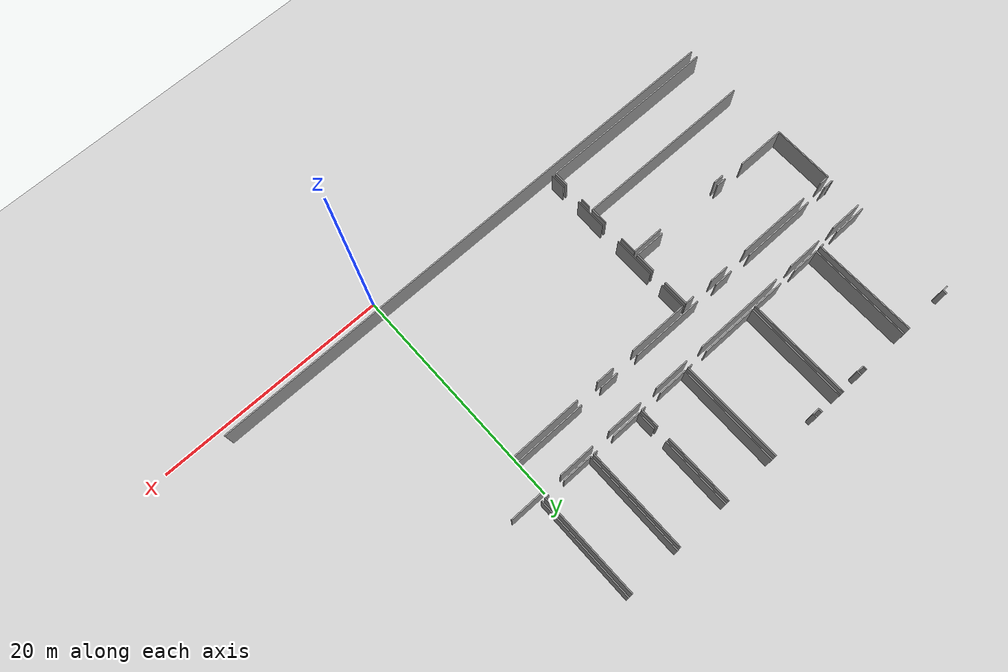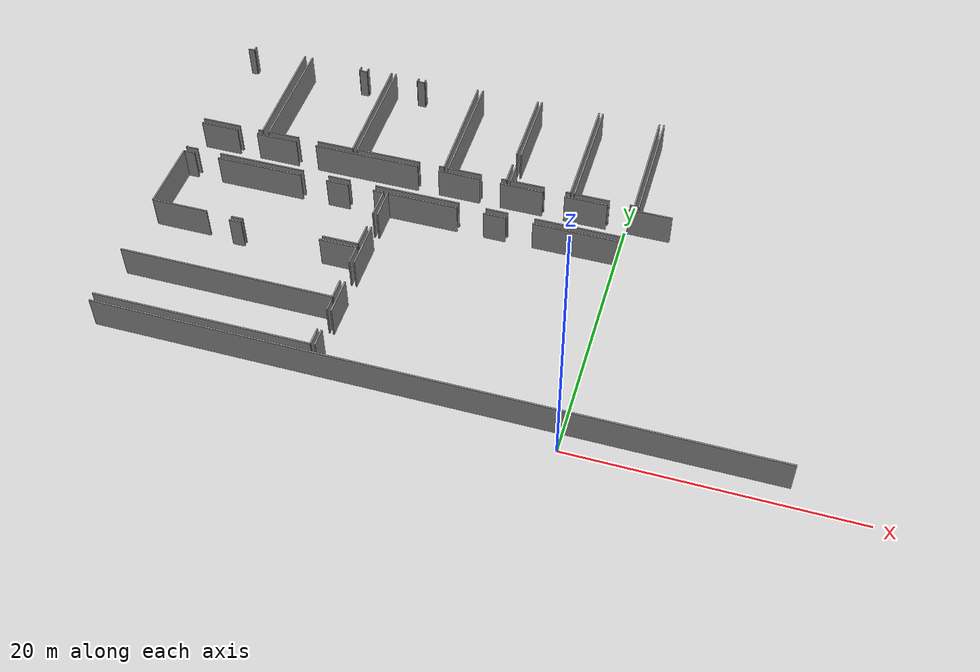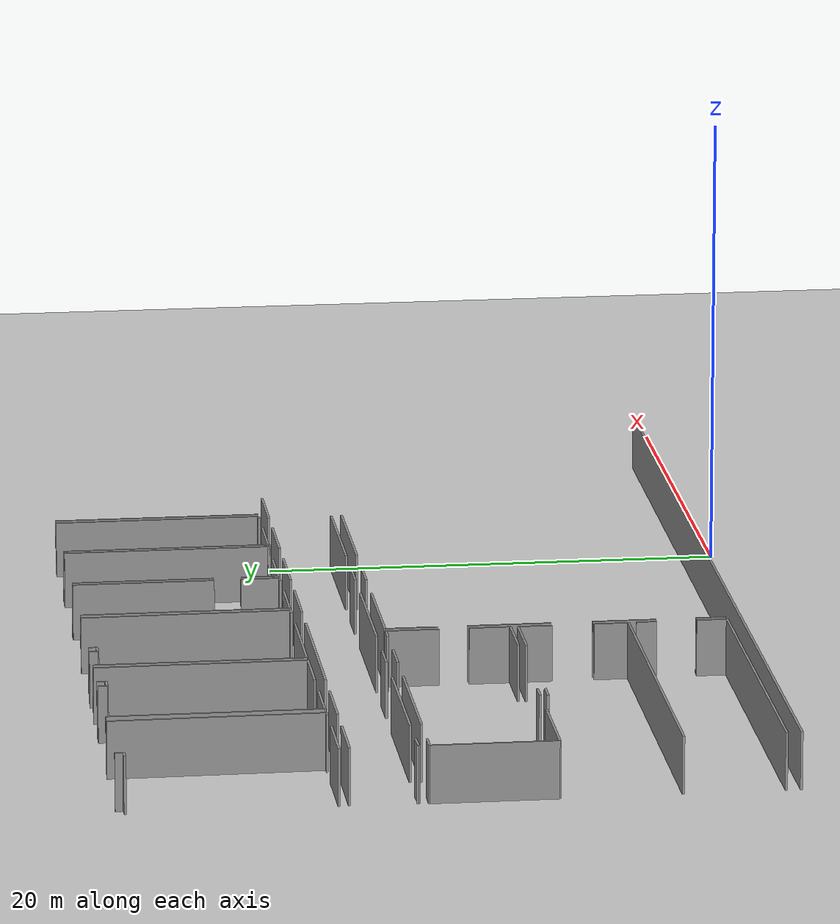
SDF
<sdf version="1.6">
 <world name="default">
  <model name="ground_plane">
   <static>1</static>
   <link name="link">
    <collision name="collision">
     <geometry><plane><normal>0 0 1</normal><size>100 100</size></plane></geometry>
     <surface><friction><ode><mu>100</mu><mu2>50</mu2></ode></friction></surface>
    </collision>
    <visual name="visual">
     <cast_shadows>0</cast_shadows>
     <geometry><plane><normal>0 0 1</normal><size>100 100</size></plane></geometry>
     <material>
      <script><uri>file://media/materials/scripts/gazebo.material</uri><name>Gazebo/Grey</name></script>
     </material>
    </visual>
   </link>
  </model>
  <model name="50010535_PLAN2">
   <static>1</static>
   <link name="Wall_160">
    <collision name="Wall_160_Collision">
     <geometry><box><size>0.0955509107196 0.1 2.5</size></box></geometry>
     <pose>0.0477754553598 0 1.25 0 0 0</pose>
    </collision>
    <visual name="Wall_160_Visual">
     <pose>0.0477754553598 0 1.25 0 0 0</pose>
     <geometry><box><size>0.0955509107196 0.1 2.5</size></box></geometry>
     <material>
      <script><uri>file://media/materials/scripts/gazebo.material</uri><name>Gazebo/Grey</name></script>
      <ambient>1 1 1 1</ambient>
     </material>
    </visual>
    <pose>69.3829469578 -12.5819457062 0 0 0 1.57079632679</pose>
   </link>
   <link name="Wall_161">
    <collision name="Wall_161_Collision">
     <geometry><box><size>2.8990552912 0.1 2.5</size></box></geometry>
     <pose>1.4495276456 0 1.25 0 0 0</pose>
    </collision>
    <visual name="Wall_161_Visual">
     <pose>1.4495276456 0 1.25 0 0 0</pose>
     <geometry><box><size>2.8990552912 0.1 2.5</size></box></geometry>
     <material>
      <script><uri>file://media/materials/scripts/gazebo.material</uri><name>Gazebo/Grey</name></script>
      <ambient>1 1 1 1</ambient>
     </material>
    </visual>
    <pose>69.3829469578 -9.74515098187 0 0 0 0.0</pose>
   </link>
   <link name="Wall_162">
    <collision name="Wall_162_Collision">
     <geometry><box><size>3.18215027668 0.1 2.5</size></box></geometry>
     <pose>1.59107513834 0 1.25 0 0 0</pose>
    </collision>
    <visual name="Wall_162_Visual">
     <pose>1.59107513834 0 1.25 0 0 0</pose>
     <geometry><box><size>3.18215027668 0.1 2.5</size></box></geometry>
     <material>
      <script><uri>file://media/materials/scripts/gazebo.material</uri><name>Gazebo/Grey</name></script>
      <ambient>1 1 1 1</ambient>
     </material>
    </visual>
    <pose>73.8934073683 -9.74515098187 0 0 0 0.0</pose>
   </link>
   <link name="Wall_163">
    <collision name="Wall_163_Collision">
     <geometry><box><size>8.06591996341 0.1 2.5</size></box></geometry>
     <pose>4.0329599817 0 1.25 0 0 0</pose>
    </collision>
    <visual name="Wall_163_Visual">
     <pose>4.0329599817 0 1.25 0 0 0</pose>
     <geometry><box><size>8.06591996341 0.1 2.5</size></box></geometry>
     <material>
      <script><uri>file://media/materials/scripts/gazebo.material</uri><name>Gazebo/Grey</name></script>
      <ambient>1 1 1 1</ambient>
     </material>
    </visual>
    <pose>78.6429991804 -9.74515098187 0 0 0 0.0</pose>
   </link>
   <link name="Wall_164">
    <collision name="Wall_164_Collision">
     <geometry><box><size>3.18545389859 0.1 2.5</size></box></geometry>
     <pose>1.5927269493 0 1.25 0 0 0</pose>
    </collision>
    <visual name="Wall_164_Visual">
     <pose>1.5927269493 0 1.25 0 0 0</pose>
     <geometry><box><size>3.18545389859 0.1 2.5</size></box></geometry>
     <material>
      <script><uri>file://media/materials/scripts/gazebo.material</uri><name>Gazebo/Grey</name></script>
      <ambient>1 1 1 1</ambient>
     </material>
    </visual>
    <pose>88.316258267 -9.74515098187 0 0 0 0.0</pose>
   </link>
   <link name="Wall_165">
    <collision name="Wall_165_Collision">
     <geometry><box><size>3.2261138606 0.1 2.5</size></box></geometry>
     <pose>1.6130569303 0 1.25 0 0 0</pose>
    </collision>
    <visual name="Wall_165_Visual">
     <pose>1.6130569303 0 1.25 0 0 0</pose>
     <geometry><box><size>3.2261138606 0.1 2.5</size></box></geometry>
     <material>
      <script><uri>file://media/materials/scripts/gazebo.material</uri><name>Gazebo/Grey</name></script>
      <ambient>1 1 1 1</ambient>
     </material>
    </visual>
    <pose>93.0813516896 -9.74515098187 0 0 0 0.0</pose>
   </link>
   <link name="Wall_166">
    <collision name="Wall_166_Collision">
     <geometry><box><size>3.19129876813 0.1 2.5</size></box></geometry>
     <pose>1.59564938407 0 1.25 0 0 0</pose>
    </collision>
    <visual name="Wall_166_Visual">
     <pose>1.59564938407 0 1.25 0 0 0</pose>
     <geometry><box><size>3.19129876813 0.1 2.5</size></box></geometry>
     <material>
      <script><uri>file://media/materials/scripts/gazebo.material</uri><name>Gazebo/Grey</name></script>
      <ambient>1 1 1 1</ambient>
     </material>
    </visual>
    <pose>97.9336099058 -9.74515098187 0 0 0 0.0</pose>
   </link>
   <link name="Wall_167">
    <collision name="Wall_167_Collision">
     <geometry><box><size>3.1745265338 0.1 2.5</size></box></geometry>
     <pose>1.5872632669 0 1.25 0 0 0</pose>
    </collision>
    <visual name="Wall_167_Visual">
     <pose>1.5872632669 0 1.25 0 0 0</pose>
     <geometry><box><size>3.1745265338 0.1 2.5</size></box></geometry>
     <material>
      <script><uri>file://media/materials/scripts/gazebo.material</uri><name>Gazebo/Grey</name></script>
      <ambient>1 1 1 1</ambient>
     </material>
    </visual>
    <pose>102.712426066 -9.74515098187 0 0 0 0.0</pose>
   </link>
   <link name="Wall_189">
    <collision name="Wall_189_Collision">
     <geometry><box><size>6.31728747228 0.1 2.5</size></box></geometry>
     <pose>3.15864373614 0 1.25 0 0 0</pose>
    </collision>
    <visual name="Wall_189_Visual">
     <pose>3.15864373614 0 1.25 0 0 0</pose>
     <geometry><box><size>6.31728747228 0.1 2.5</size></box></geometry>
     <material>
      <script><uri>file://media/materials/scripts/gazebo.material</uri><name>Gazebo/Grey</name></script>
      <ambient>1 1 1 1</ambient>
     </material>
    </visual>
    <pose>102.756389649 -12.5499259862 0 0 0 3.14159265359</pose>
   </link>
   <link name="Wall_190">
    <collision name="Wall_190_Collision">
     <geometry><box><size>1.66782081663 0.1 2.5</size></box></geometry>
     <pose>0.833910408315 0 1.25 0 0 0</pose>
    </collision>
    <visual name="Wall_190_Visual">
     <pose>0.833910408315 0 1.25 0 0 0</pose>
     <geometry><box><size>1.66782081663 0.1 2.5</size></box></geometry>
     <material>
      <script><uri>file://media/materials/scripts/gazebo.material</uri><name>Gazebo/Grey</name></script>
      <ambient>1 1 1 1</ambient>
     </material>
    </visual>
    <pose>94.4554042807 -12.5499259862 0 0 0 3.14159265359</pose>
   </link>
   <link name="Wall_191">
    <collision name="Wall_191_Collision">
     <geometry><box><size>6.39301665153 0.1 2.5</size></box></geometry>
     <pose>3.19650832576 0 1.25 0 0 0</pose>
    </collision>
    <visual name="Wall_191_Visual">
     <pose>3.19650832576 0 1.25 0 0 0</pose>
     <geometry><box><size>6.39301665153 0.1 2.5</size></box></geometry>
     <material>
      <script><uri>file://media/materials/scripts/gazebo.material</uri><name>Gazebo/Grey</name></script>
      <ambient>1 1 1 1</ambient>
     </material>
    </visual>
    <pose>90.7787272161 -12.5499259862 0 0 0 3.14159265359</pose>
   </link>
   <link name="Wall_192">
    <collision name="Wall_192_Collision">
     <geometry><box><size>1.68027292999 0.1 2.5</size></box></geometry>
     <pose>0.840136464997 0 1.25 0 0 0</pose>
    </collision>
    <visual name="Wall_192_Visual">
     <pose>0.840136464997 0 1.25 0 0 0</pose>
     <geometry><box><size>1.68027292999 0.1 2.5</size></box></geometry>
     <material>
      <script><uri>file://media/materials/scripts/gazebo.material</uri><name>Gazebo/Grey</name></script>
      <ambient>1 1 1 1</ambient>
     </material>
    </visual>
    <pose>82.4147189062 -12.5499259862 0 0 0 3.14159265359</pose>
   </link>
   <link name="Wall_193">
    <collision name="Wall_193_Collision">
     <geometry><box><size>6.63291042737 0.1 2.5</size></box></geometry>
     <pose>3.31645521369 0 1.25 0 0 0</pose>
    </collision>
    <visual name="Wall_193_Visual">
     <pose>3.31645521369 0 1.25 0 0 0</pose>
     <geometry><box><size>6.63291042737 0.1 2.5</size></box></geometry>
     <material>
      <script><uri>file://media/materials/scripts/gazebo.material</uri><name>Gazebo/Grey</name></script>
      <ambient>1 1 1 1</ambient>
     </material>
    </visual>
    <pose>78.7380418416 -12.5499259862 0 0 0 3.14159265359</pose>
   </link>
   <link name="Wall_194">
    <collision name="Wall_194_Collision">
     <geometry><box><size>0.878076810685 0.1 2.5</size></box></geometry>
     <pose>0.439038405343 0 1.25 0 0 0</pose>
    </collision>
    <visual name="Wall_194_Visual">
     <pose>0.439038405343 0 1.25 0 0 0</pose>
     <geometry><box><size>0.878076810685 0.1 2.5</size></box></geometry>
     <material>
      <script><uri>file://media/materials/scripts/gazebo.material</uri><name>Gazebo/Grey</name></script>
      <ambient>1 1 1 1</ambient>
     </material>
    </visual>
    <pose>70.2604397629 -12.5499259862 0 0 0 -3.10511882771</pose>
   </link>
   <link name="Wall_195">
    <collision name="Wall_195_Collision">
     <geometry><box><size>0.32655031988 0.1 2.5</size></box></geometry>
     <pose>0.16327515994 0 1.25 0 0 0</pose>
    </collision>
    <visual name="Wall_195_Visual">
     <pose>0.16327515994 0 1.25 0 0 0</pose>
     <geometry><box><size>0.32655031988 0.1 2.5</size></box></geometry>
     <material>
      <script><uri>file://media/materials/scripts/gazebo.material</uri><name>Gazebo/Grey</name></script>
      <ambient>1 1 1 1</ambient>
     </material>
    </visual>
    <pose>74.1597301195 -9.31491775887 0 0 0 3.14159265359</pose>
   </link>
   <link name="Wall_196">
    <collision name="Wall_196_Collision">
     <geometry><box><size>2.98240821331 0.1 2.5</size></box></geometry>
     <pose>1.49120410666 0 1.25 0 0 0</pose>
    </collision>
    <visual name="Wall_196_Visual">
     <pose>1.49120410666 0 1.25 0 0 0</pose>
     <geometry><box><size>2.98240821331 0.1 2.5</size></box></geometry>
     <material>
      <script><uri>file://media/materials/scripts/gazebo.material</uri><name>Gazebo/Grey</name></script>
      <ambient>1 1 1 1</ambient>
     </material>
    </visual>
    <pose>72.3305400787 -9.31491775887 0 0 0 3.14159265359</pose>
   </link>
   <link name="Wall_198">
    <collision name="Wall_198_Collision">
     <geometry><box><size>0.491477290776 0.1 2.5</size></box></geometry>
     <pose>0.245738645388 0 1.25 0 0 0</pose>
    </collision>
    <visual name="Wall_198_Visual">
     <pose>0.245738645388 0 1.25 0 0 0</pose>
     <geometry><box><size>0.491477290776 0.1 2.5</size></box></geometry>
     <material>
      <script><uri>file://media/materials/scripts/gazebo.material</uri><name>Gazebo/Grey</name></script>
      <ambient>1 1 1 1</ambient>
     </material>
    </visual>
    <pose>69.3481318653 -0.581869468816 0 0 0 0.0</pose>
   </link>
   <link name="Wall_199">
    <collision name="Wall_199_Collision">
     <geometry><box><size>0.37778187201 0.1 2.5</size></box></geometry>
     <pose>0.188890936005 0 1.25 0 0 0</pose>
    </collision>
    <visual name="Wall_199_Visual">
     <pose>0.188890936005 0 1.25 0 0 0</pose>
     <geometry><box><size>0.37778187201 0.1 2.5</size></box></geometry>
     <material>
      <script><uri>file://media/materials/scripts/gazebo.material</uri><name>Gazebo/Grey</name></script>
      <ambient>1 1 1 1</ambient>
     </material>
    </visual>
    <pose>69.8396091561 -0.581869468816 0 0 0 1.57079632679</pose>
   </link>
   <link name="Wall_200">
    <collision name="Wall_200_Collision">
     <geometry><box><size>9.11148239852 0.1 2.5</size></box></geometry>
     <pose>4.55574119926 0 1.25 0 0 0</pose>
    </collision>
    <visual name="Wall_200_Visual">
     <pose>4.55574119926 0 1.25 0 0 0</pose>
     <geometry><box><size>9.11148239852 0.1 2.5</size></box></geometry>
     <material>
      <script><uri>file://media/materials/scripts/gazebo.material</uri><name>Gazebo/Grey</name></script>
      <ambient>1 1 1 1</ambient>
     </material>
    </visual>
    <pose>74.0507105964 -0.204087596806 0 0 0 -1.55883097146</pose>
   </link>
   <link name="Wall_201">
    <collision name="Wall_201_Collision">
     <geometry><box><size>2.78622389662 0.1 2.5</size></box></geometry>
     <pose>1.39311194831 0 1.25 0 0 0</pose>
    </collision>
    <visual name="Wall_201_Visual">
     <pose>1.39311194831 0 1.25 0 0 0</pose>
     <geometry><box><size>2.78622389662 0.1 2.5</size></box></geometry>
     <material>
      <script><uri>file://media/materials/scripts/gazebo.material</uri><name>Gazebo/Grey</name></script>
      <ambient>1 1 1 1</ambient>
     </material>
    </visual>
    <pose>81.4231240828 -9.29560427692 0 0 0 3.14159265359</pose>
   </link>
   <link name="Wall_202">
    <collision name="Wall_202_Collision">
     <geometry><box><size>2.42104661283 0.1 2.5</size></box></geometry>
     <pose>1.21052330642 0 1.25 0 0 0</pose>
    </collision>
    <visual name="Wall_202_Visual">
     <pose>1.21052330642 0 1.25 0 0 0</pose>
     <geometry><box><size>2.42104661283 0.1 2.5</size></box></geometry>
     <material>
      <script><uri>file://media/materials/scripts/gazebo.material</uri><name>Gazebo/Grey</name></script>
      <ambient>1 1 1 1</ambient>
     </material>
    </visual>
    <pose>77.0996994975 -9.29560427692 0 0 0 3.14159265359</pose>
   </link>
   <link name="Wall_203">
    <collision name="Wall_203_Collision">
     <geometry><box><size>9.07588800722 0.1 2.5</size></box></geometry>
     <pose>4.53794400361 0 1.25 0 0 0</pose>
    </collision>
    <visual name="Wall_203_Visual">
     <pose>4.53794400361 0 1.25 0 0 0</pose>
     <geometry><box><size>9.07588800722 0.1 2.5</size></box></geometry>
     <material>
      <script><uri>file://media/materials/scripts/gazebo.material</uri><name>Gazebo/Grey</name></script>
      <ambient>1 1 1 1</ambient>
     </material>
    </visual>
    <pose>74.6786528846 -9.29560427692 0 0 0 1.57079632679</pose>
   </link>
   <link name="Wall_204">
    <collision name="Wall_204_Collision">
     <geometry><box><size>0.391275896902 0.1 2.5</size></box></geometry>
     <pose>0.195637948451 0 1.25 0 0 0</pose>
    </collision>
    <visual name="Wall_204_Visual">
     <pose>0.195637948451 0 1.25 0 0 0</pose>
     <geometry><box><size>0.391275896902 0.1 2.5</size></box></geometry>
     <material>
      <script><uri>file://media/materials/scripts/gazebo.material</uri><name>Gazebo/Grey</name></script>
      <ambient>1 1 1 1</ambient>
     </material>
    </visual>
    <pose>78.8523979848 -0.219716269703 0 0 0 -1.57079632679</pose>
   </link>
   <link name="Wall_205">
    <collision name="Wall_205_Collision">
     <geometry><box><size>0.598209691048 0.1 2.5</size></box></geometry>
     <pose>0.299104845524 0 1.25 0 0 0</pose>
    </collision>
    <visual name="Wall_205_Visual">
     <pose>0.299104845524 0 1.25 0 0 0</pose>
     <geometry><box><size>0.598209691048 0.1 2.5</size></box></geometry>
     <material>
      <script><uri>file://media/materials/scripts/gazebo.material</uri><name>Gazebo/Grey</name></script>
      <ambient>1 1 1 1</ambient>
     </material>
    </visual>
    <pose>78.8523979848 -0.610992166604 0 0 0 0.0</pose>
   </link>
   <link name="Wall_206">
    <collision name="Wall_206_Collision">
     <geometry><box><size>0.390437285185 0.1 2.5</size></box></geometry>
     <pose>0.195218642593 0 1.25 0 0 0</pose>
    </collision>
    <visual name="Wall_206_Visual">
     <pose>0.195218642593 0 1.25 0 0 0</pose>
     <geometry><box><size>0.390437285185 0.1 2.5</size></box></geometry>
     <material>
      <script><uri>file://media/materials/scripts/gazebo.material</uri><name>Gazebo/Grey</name></script>
      <ambient>1 1 1 1</ambient>
     </material>
    </visual>
    <pose>79.4506076758 -0.610992166604 0 0 0 1.57079632679</pose>
   </link>
   <link name="Wall_207">
    <collision name="Wall_207_Collision">
     <geometry><box><size>9.0751242037 0.1 2.5</size></box></geometry>
     <pose>4.53756210185 0 1.25 0 0 0</pose>
    </collision>
    <visual name="Wall_207_Visual">
     <pose>4.53756210185 0 1.25 0 0 0</pose>
     <geometry><box><size>9.0751242037 0.1 2.5</size></box></geometry>
     <material>
      <script><uri>file://media/materials/scripts/gazebo.material</uri><name>Gazebo/Grey</name></script>
      <ambient>1 1 1 1</ambient>
     </material>
    </visual>
    <pose>81.3862759922 -0.220554881419 0 0 0 -1.56673597555</pose>
   </link>
   <link name="Wall_208">
    <collision name="Wall_208_Collision">
     <geometry><box><size>0.36746440665 0.1 2.5</size></box></geometry>
     <pose>0.183732203325 0 1.25 0 0 0</pose>
    </collision>
    <visual name="Wall_208_Visual">
     <pose>0.183732203325 0 1.25 0 0 0</pose>
     <geometry><box><size>0.36746440665 0.1 2.5</size></box></geometry>
     <material>
      <script><uri>file://media/materials/scripts/gazebo.material</uri><name>Gazebo/Grey</name></script>
      <ambient>1 1 1 1</ambient>
     </material>
    </visual>
    <pose>88.6097723677 -9.28721815976 0 0 0 3.14159265359</pose>
   </link>
   <link name="Wall_209">
    <collision name="Wall_209_Collision">
     <geometry><box><size>4.94018538401 0.1 2.5</size></box></geometry>
     <pose>2.47009269201 0 1.25 0 0 0</pose>
    </collision>
    <visual name="Wall_209_Visual">
     <pose>2.47009269201 0 1.25 0 0 0</pose>
     <geometry><box><size>4.94018538401 0.1 2.5</size></box></geometry>
     <material>
      <script><uri>file://media/materials/scripts/gazebo.material</uri><name>Gazebo/Grey</name></script>
      <ambient>1 1 1 1</ambient>
     </material>
    </visual>
    <pose>86.7086650191 -9.28721815976 0 0 0 3.14159265359</pose>
   </link>
   <link name="Wall_210">
    <collision name="Wall_210_Collision">
     <geometry><box><size>9.05405869011 0.1 2.5</size></box></geometry>
     <pose>4.52702934506 0 1.25 0 0 0</pose>
    </collision>
    <visual name="Wall_210_Visual">
     <pose>4.52702934506 0 1.25 0 0 0</pose>
     <geometry><box><size>9.05405869011 0.1 2.5</size></box></geometry>
     <material>
      <script><uri>file://media/materials/scripts/gazebo.material</uri><name>Gazebo/Grey</name></script>
      <ambient>1 1 1 1</ambient>
     </material>
    </visual>
    <pose>81.7684796351 -9.28721815976 0 0 0 1.57079632679</pose>
   </link>
   <link name="Wall_211">
    <collision name="Wall_211_Collision">
     <geometry><box><size>0.361238349968 0.1 2.5</size></box></geometry>
     <pose>0.180619174984 0 1.25 0 0 0</pose>
    </collision>
    <visual name="Wall_211_Visual">
     <pose>0.180619174984 0 1.25 0 0 0</pose>
     <geometry><box><size>0.361238349968 0.1 2.5</size></box></geometry>
     <material>
      <script><uri>file://media/materials/scripts/gazebo.material</uri><name>Gazebo/Grey</name></script>
      <ambient>1 1 1 1</ambient>
     </material>
    </visual>
    <pose>83.6708576075 -0.233159469642 0 0 0 -1.57079632679</pose>
   </link>
   <link name="Wall_212">
    <collision name="Wall_212_Collision">
     <geometry><box><size>0.581437456719 0.1 2.5</size></box></geometry>
     <pose>0.29071872836 0 1.25 0 0 0</pose>
    </collision>
    <visual name="Wall_212_Visual">
     <pose>0.29071872836 0 1.25 0 0 0</pose>
     <geometry><box><size>0.581437456719 0.1 2.5</size></box></geometry>
     <material>
      <script><uri>file://media/materials/scripts/gazebo.material</uri><name>Gazebo/Grey</name></script>
      <ambient>1 1 1 1</ambient>
     </material>
    </visual>
    <pose>83.6708576075 -0.59439781961 0 0 0 0.0</pose>
   </link>
   <link name="Wall_213">
    <collision name="Wall_213_Collision">
     <geometry><box><size>0.35722317872 0.1 2.5</size></box></geometry>
     <pose>0.17861158936 0 1.25 0 0 0</pose>
    </collision>
    <visual name="Wall_213_Visual">
     <pose>0.17861158936 0 1.25 0 0 0</pose>
     <geometry><box><size>0.35722317872 0.1 2.5</size></box></geometry>
     <material>
      <script><uri>file://media/materials/scripts/gazebo.material</uri><name>Gazebo/Grey</name></script>
      <ambient>1 1 1 1</ambient>
     </material>
    </visual>
    <pose>84.2522950643 -0.59439781961 0 0 0 1.57079632679</pose>
   </link>
   <link name="Wall_214">
    <collision name="Wall_214_Collision">
     <geometry><box><size>9.05039082637 0.1 2.5</size></box></geometry>
     <pose>4.52519541318 0 1.25 0 0 0</pose>
    </collision>
    <visual name="Wall_214_Visual">
     <pose>4.52519541318 0 1.25 0 0 0</pose>
     <geometry><box><size>9.05039082637 0.1 2.5</size></box></geometry>
     <material>
      <script><uri>file://media/materials/scripts/gazebo.material</uri><name>Gazebo/Grey</name></script>
      <ambient>1 1 1 1</ambient>
     </material>
    </visual>
    <pose>88.5304854418 -0.23717464089 0 0 0 -1.56203560677</pose>
   </link>
   <link name="Wall_215">
    <collision name="Wall_215_Collision">
     <geometry><box><size>0.364160784737 0.1 2.5</size></box></geometry>
     <pose>0.182080392369 0 1.25 0 0 0</pose>
    </collision>
    <visual name="Wall_215_Visual">
     <pose>0.182080392369 0 1.25 0 0 0</pose>
     <geometry><box><size>0.364160784737 0.1 2.5</size></box></geometry>
     <material>
      <script><uri>file://media/materials/scripts/gazebo.material</uri><name>Gazebo/Grey</name></script>
      <ambient>1 1 1 1</ambient>
     </material>
    </visual>
    <pose>93.4221329962 -9.28721815976 0 0 0 3.14159265359</pose>
   </link>
   <link name="Wall_216">
    <collision name="Wall_216_Collision">
     <geometry><box><size>2.58673595802 0.1 2.5</size></box></geometry>
     <pose>1.29336797901 0 1.25 0 0 0</pose>
    </collision>
    <visual name="Wall_216_Visual">
     <pose>1.29336797901 0 1.25 0 0 0</pose>
     <geometry><box><size>2.58673595802 0.1 2.5</size></box></geometry>
     <material>
      <script><uri>file://media/materials/scripts/gazebo.material</uri><name>Gazebo/Grey</name></script>
      <ambient>1 1 1 1</ambient>
     </material>
    </visual>
    <pose>91.5306823885 -9.28721815976 0 0 0 3.14159265359</pose>
   </link>
   <link name="Wall_217">
    <collision name="Wall_217_Collision">
     <geometry><box><size>9.03454190835 0.1 2.5</size></box></geometry>
     <pose>4.51727095417 0 1.25 0 0 0</pose>
    </collision>
    <visual name="Wall_217_Visual">
     <pose>4.51727095417 0 1.25 0 0 0</pose>
     <geometry><box><size>9.03454190835 0.1 2.5</size></box></geometry>
     <material>
      <script><uri>file://media/materials/scripts/gazebo.material</uri><name>Gazebo/Grey</name></script>
      <ambient>1 1 1 1</ambient>
     </material>
    </visual>
    <pose>88.9439464305 -9.28721815976 0 0 0 1.57079632679</pose>
   </link>
   <link name="Wall_218">
    <collision name="Wall_218_Collision">
     <geometry><box><size>6.1773917905 0.1 2.5</size></box></geometry>
     <pose>3.08869589525 0 1.25 0 0 0</pose>
    </collision>
    <visual name="Wall_218_Visual">
     <pose>3.08869589525 0 1.25 0 0 0</pose>
     <geometry><box><size>6.1773917905 0.1 2.5</size></box></geometry>
     <material>
      <script><uri>file://media/materials/scripts/gazebo.material</uri><name>Gazebo/Grey</name></script>
      <ambient>1 1 1 1</ambient>
     </material>
    </visual>
    <pose>93.4089185085 -0.252676251406 0 0 0 -1.57079632679</pose>
   </link>
   <link name="Wall_219">
    <collision name="Wall_219_Collision">
     <geometry><box><size>1.69506367619 0.1 2.5</size></box></geometry>
     <pose>0.847531838093 0 1.25 0 0 0</pose>
    </collision>
    <visual name="Wall_219_Visual">
     <pose>0.847531838093 0 1.25 0 0 0</pose>
     <geometry><box><size>1.69506367619 0.1 2.5</size></box></geometry>
     <material>
      <script><uri>file://media/materials/scripts/gazebo.material</uri><name>Gazebo/Grey</name></script>
      <ambient>1 1 1 1</ambient>
     </material>
    </visual>
    <pose>93.4089185085 -7.59220599353 0 0 0 -1.56300038279</pose>
   </link>
   <link name="Wall_220">
    <collision name="Wall_220_Collision">
     <geometry><box><size>0.326804444642 0.1 2.5</size></box></geometry>
     <pose>0.163402222321 0 1.25 0 0 0</pose>
    </collision>
    <visual name="Wall_220_Visual">
     <pose>0.163402222321 0 1.25 0 0 0</pose>
     <geometry><box><size>0.326804444642 0.1 2.5</size></box></geometry>
     <material>
      <script><uri>file://media/materials/scripts/gazebo.material</uri><name>Gazebo/Grey</name></script>
      <ambient>1 1 1 1</ambient>
     </material>
    </visual>
    <pose>98.2560942295 -9.27654491973 0 0 0 3.14159265359</pose>
   </link>
   <link name="Wall_221">
    <collision name="Wall_221_Collision">
     <geometry><box><size>2.59003957993 0.1 2.5</size></box></geometry>
     <pose>1.29501978997 0 1.25 0 0 0</pose>
    </collision>
    <visual name="Wall_221_Visual">
     <pose>1.29501978997 0 1.25 0 0 0</pose>
     <geometry><box><size>2.59003957993 0.1 2.5</size></box></geometry>
     <material>
      <script><uri>file://media/materials/scripts/gazebo.material</uri><name>Gazebo/Grey</name></script>
      <ambient>1 1 1 1</ambient>
     </material>
    </visual>
    <pose>96.3128021702 -9.27654491973 0 0 0 3.14159265359</pose>
   </link>
   <link name="Wall_222">
    <collision name="Wall_222_Collision">
     <geometry><box><size>1.64342483942 0.1 2.5</size></box></geometry>
     <pose>0.821712419712 0 1.25 0 0 0</pose>
    </collision>
    <visual name="Wall_222_Visual">
     <pose>0.821712419712 0 1.25 0 0 0</pose>
     <geometry><box><size>1.64342483942 0.1 2.5</size></box></geometry>
     <material>
      <script><uri>file://media/materials/scripts/gazebo.material</uri><name>Gazebo/Grey</name></script>
      <ambient>1 1 1 1</ambient>
     </material>
    </visual>
    <pose>93.7227625903 -9.27654491973 0 0 0 1.57079632679</pose>
   </link>
   <link name="Wall_223">
    <collision name="Wall_223_Collision">
     <geometry><box><size>6.1733257943 0.1 2.5</size></box></geometry>
     <pose>3.08666289715 0 1.25 0 0 0</pose>
    </collision>
    <visual name="Wall_223_Visual">
     <pose>3.08666289715 0 1.25 0 0 0</pose>
     <geometry><box><size>6.1733257943 0.1 2.5</size></box></geometry>
     <material>
      <script><uri>file://media/materials/scripts/gazebo.material</uri><name>Gazebo/Grey</name></script>
      <ambient>1 1 1 1</ambient>
     </material>
    </visual>
    <pose>93.7227625903 -6.42102120036 0 0 0 1.57079632679</pose>
   </link>
   <link name="Wall_224">
    <collision name="Wall_224_Collision">
     <geometry><box><size>9.02886196269 0.1 2.5</size></box></geometry>
     <pose>4.51443098135 0 1.25 0 0 0</pose>
    </collision>
    <visual name="Wall_224_Visual">
     <pose>4.51443098135 0 1.25 0 0 0</pose>
     <geometry><box><size>9.02886196269 0.1 2.5</size></box></geometry>
     <material>
      <script><uri>file://media/materials/scripts/gazebo.material</uri><name>Gazebo/Grey</name></script>
      <ambient>1 1 1 1</ambient>
     </material>
    </visual>
    <pose>98.2710875905 -0.24769540606 0 0 0 -1.57245693119</pose>
   </link>
   <link name="Wall_225">
    <collision name="Wall_225_Collision">
     <geometry><box><size>0.32858331798 0.1 2.5</size></box></geometry>
     <pose>0.16429165899 0 1.25 0 0 0</pose>
    </collision>
    <visual name="Wall_225_Visual">
     <pose>0.16429165899 0 1.25 0 0 0</pose>
     <geometry><box><size>0.32858331798 0.1 2.5</size></box></geometry>
     <material>
      <script><uri>file://media/materials/scripts/gazebo.material</uri><name>Gazebo/Grey</name></script>
      <ambient>1 1 1 1</ambient>
     </material>
    </visual>
    <pose>103.021695902 -9.30271977027 0 0 0 3.14159265359</pose>
   </link>
   <link name="Wall_226">
    <collision name="Wall_226_Collision">
     <geometry><box><size>2.63273254004 0.1 2.5</size></box></geometry>
     <pose>1.31636627002 0 1.25 0 0 0</pose>
    </collision>
    <visual name="Wall_226_Visual">
     <pose>1.31636627002 0 1.25 0 0 0</pose>
     <geometry><box><size>2.63273254004 0.1 2.5</size></box></geometry>
     <material>
      <script><uri>file://media/materials/scripts/gazebo.material</uri><name>Gazebo/Grey</name></script>
      <ambient>1 1 1 1</ambient>
     </material>
    </visual>
    <pose>101.196063607 -9.30271977027 0 0 0 3.14159265359</pose>
   </link>
   <link name="Wall_227">
    <collision name="Wall_227_Collision">
     <geometry><box><size>9.08409623705 0.1 2.5</size></box></geometry>
     <pose>4.54204811852 0 1.25 0 0 0</pose>
    </collision>
    <visual name="Wall_227_Visual">
     <pose>4.54204811852 0 1.25 0 0 0</pose>
     <geometry><box><size>9.08409623705 0.1 2.5</size></box></geometry>
     <material>
      <script><uri>file://media/materials/scripts/gazebo.material</uri><name>Gazebo/Grey</name></script>
      <ambient>1 1 1 1</ambient>
     </material>
    </visual>
    <pose>98.5633310674 -9.30271977027 0 0 0 1.57079632679</pose>
   </link>
   <link name="Wall_228">
    <collision name="Wall_228_Collision">
     <geometry><box><size>9.08414406668 0.1 2.5</size></box></geometry>
     <pose>4.54207203334 0 1.25 0 0 0</pose>
    </collision>
    <visual name="Wall_228_Visual">
     <pose>4.54207203334 0 1.25 0 0 0</pose>
     <geometry><box><size>9.08414406668 0.1 2.5</size></box></geometry>
     <material>
      <script><uri>file://media/materials/scripts/gazebo.material</uri><name>Gazebo/Grey</name></script>
      <ambient>1 1 1 1</ambient>
     </material>
    </visual>
    <pose>102.992217429 -0.218623533224 0 0 0 -1.56755127432</pose>
   </link>
   <link name="Wall_231">
    <collision name="Wall_231_Collision">
     <geometry><box><size>9.09832722375 0.1 2.5</size></box></geometry>
     <pose>4.54916361188 0 1.25 0 0 0</pose>
    </collision>
    <visual name="Wall_231_Visual">
     <pose>4.54916361188 0 1.25 0 0 0</pose>
     <geometry><box><size>9.09832722375 0.1 2.5</size></box></geometry>
     <material>
      <script><uri>file://media/materials/scripts/gazebo.material</uri><name>Gazebo/Grey</name></script>
      <ambient>1 1 1 1</ambient>
     </material>
    </visual>
    <pose>103.347992097 -9.31695075697 0 0 0 1.57079632679</pose>
   </link>
   <link name="Wall_289">
    <collision name="Wall_289_Collision">
     <geometry><box><size>2.67339250205 0.1 2.5</size></box></geometry>
     <pose>1.33669625102 0 1.25 0 0 0</pose>
    </collision>
    <visual name="Wall_289_Visual">
     <pose>1.33669625102 0 1.25 0 0 0</pose>
     <geometry><box><size>2.67339250205 0.1 2.5</size></box></geometry>
     <material>
      <script><uri>file://media/materials/scripts/gazebo.material</uri><name>Gazebo/Grey</name></script>
      <ambient>1 1 1 1</ambient>
     </material>
    </visual>
    <pose>85.1394446103 -18.3808186629 0 0 0 3.14159265359</pose>
   </link>
   <link name="Wall_290">
    <collision name="Wall_290_Collision">
     <geometry><box><size>0.886133047019 0.1 2.5</size></box></geometry>
     <pose>0.44306652351 0 1.25 0 0 0</pose>
    </collision>
    <visual name="Wall_290_Visual">
     <pose>0.44306652351 0 1.25 0 0 0</pose>
     <geometry><box><size>0.886133047019 0.1 2.5</size></box></geometry>
     <material>
      <script><uri>file://media/materials/scripts/gazebo.material</uri><name>Gazebo/Grey</name></script>
      <ambient>1 1 1 1</ambient>
     </material>
    </visual>
    <pose>76.3924702833 -18.3808186629 0 0 0 3.14159265359</pose>
   </link>
   <link name="Wall_291">
    <collision name="Wall_291_Collision">
     <geometry><box><size>4.22812779934 0.1 2.5</size></box></geometry>
     <pose>2.11406389967 0 1.25 0 0 0</pose>
    </collision>
    <visual name="Wall_291_Visual">
     <pose>2.11406389967 0 1.25 0 0 0</pose>
     <geometry><box><size>4.22812779934 0.1 2.5</size></box></geometry>
     <material>
      <script><uri>file://media/materials/scripts/gazebo.material</uri><name>Gazebo/Grey</name></script>
      <ambient>1 1 1 1</ambient>
     </material>
    </visual>
    <pose>73.5882035285 -18.3808186629 0 0 0 3.14159265359</pose>
   </link>
   <link name="Wall_292">
    <collision name="Wall_292_Collision">
     <geometry><box><size>5.35949124223 0.1 2.5</size></box></geometry>
     <pose>2.67974562111 0 1.25 0 0 0</pose>
    </collision>
    <visual name="Wall_292_Visual">
     <pose>2.67974562111 0 1.25 0 0 0</pose>
     <geometry><box><size>5.35949124223 0.1 2.5</size></box></geometry>
     <material>
      <script><uri>file://media/materials/scripts/gazebo.material</uri><name>Gazebo/Grey</name></script>
      <ambient>1 1 1 1</ambient>
     </material>
    </visual>
    <pose>69.3600757292 -18.3808186629 0 0 0 1.57079632679</pose>
   </link>
   <link name="Wall_293">
    <collision name="Wall_293_Collision">
     <geometry><box><size>0.854113326938 0.1 2.5</size></box></geometry>
     <pose>0.427056663469 0 1.25 0 0 0</pose>
    </collision>
    <visual name="Wall_293_Visual">
     <pose>0.427056663469 0 1.25 0 0 0</pose>
     <geometry><box><size>0.854113326938 0.1 2.5</size></box></geometry>
     <material>
      <script><uri>file://media/materials/scripts/gazebo.material</uri><name>Gazebo/Grey</name></script>
      <ambient>1 1 1 1</ambient>
     </material>
    </visual>
    <pose>69.3600757292 -13.0213274207 0 0 0 0.0</pose>
   </link>
   <link name="Wall_294">
    <collision name="Wall_294_Collision">
     <geometry><box><size>6.5818313501 0.1 2.5</size></box></geometry>
     <pose>3.29091567505 0 1.25 0 0 0</pose>
    </collision>
    <visual name="Wall_294_Visual">
     <pose>3.29091567505 0 1.25 0 0 0</pose>
     <geometry><box><size>6.5818313501 0.1 2.5</size></box></geometry>
     <material>
      <script><uri>file://media/materials/scripts/gazebo.material</uri><name>Gazebo/Grey</name></script>
      <ambient>1 1 1 1</ambient>
     </material>
    </visual>
    <pose>72.135372261 -13.0213274207 0 0 0 0.0</pose>
   </link>
   <link name="Wall_295">
    <collision name="Wall_295_Collision">
     <geometry><box><size>1.70289003386 0.1 2.5</size></box></geometry>
     <pose>0.851445016931 0 1.25 0 0 0</pose>
    </collision>
    <visual name="Wall_295_Visual">
     <pose>0.851445016931 0 1.25 0 0 0</pose>
     <geometry><box><size>1.70289003386 0.1 2.5</size></box></geometry>
     <material>
      <script><uri>file://media/materials/scripts/gazebo.material</uri><name>Gazebo/Grey</name></script>
      <ambient>1 1 1 1</ambient>
     </material>
    </visual>
    <pose>80.7306341048 -13.0213274207 0 0 0 0.0</pose>
   </link>
   <link name="Wall_296">
    <collision name="Wall_296_Collision">
     <geometry><box><size>0.768981531483 0.1 2.5</size></box></geometry>
     <pose>0.384490765741 0 1.25 0 0 0</pose>
    </collision>
    <visual name="Wall_296_Visual">
     <pose>0.384490765741 0 1.25 0 0 0</pose>
     <geometry><box><size>0.768981531483 0.1 2.5</size></box></geometry>
     <material>
      <script><uri>file://media/materials/scripts/gazebo.material</uri><name>Gazebo/Grey</name></script>
      <ambient>1 1 1 1</ambient>
     </material>
    </visual>
    <pose>84.3780868217 -13.0213274207 0 0 0 0.0</pose>
   </link>
   <link name="Wall_297">
    <collision name="Wall_297_Collision">
     <geometry><box><size>2.28280274201 0.1 2.5</size></box></geometry>
     <pose>1.141401371 0 1.25 0 0 0</pose>
    </collision>
    <visual name="Wall_297_Visual">
     <pose>1.141401371 0 1.25 0 0 0</pose>
     <geometry><box><size>2.28280274201 0.1 2.5</size></box></geometry>
     <material>
      <script><uri>file://media/materials/scripts/gazebo.material</uri><name>Gazebo/Grey</name></script>
      <ambient>1 1 1 1</ambient>
     </material>
    </visual>
    <pose>85.1470683532 -13.0213274207 0 0 0 -1.57079632679</pose>
   </link>
   <link name="Wall_298">
    <collision name="Wall_298_Collision">
     <geometry><box><size>1.78320975577 0.1 2.5</size></box></geometry>
     <pose>0.891604877884 0 1.25 0 0 0</pose>
    </collision>
    <visual name="Wall_298_Visual">
     <pose>0.891604877884 0 1.25 0 0 0</pose>
     <geometry><box><size>1.78320975577 0.1 2.5</size></box></geometry>
     <material>
      <script><uri>file://media/materials/scripts/gazebo.material</uri><name>Gazebo/Grey</name></script>
      <ambient>1 1 1 1</ambient>
     </material>
    </visual>
    <pose>85.1470683532 -16.5976252041 0 0 0 -1.57507163208</pose>
   </link>
   <link name="Wall_299">
    <collision name="Wall_299_Collision">
     <geometry><box><size>15.8083391041 0.1 2.5</size></box></geometry>
     <pose>7.90416955204 0 1.25 0 0 0</pose>
    </collision>
    <visual name="Wall_299_Visual">
     <pose>7.90416955204 0 1.25 0 0 0</pose>
     <geometry><box><size>15.8083391041 0.1 2.5</size></box></geometry>
     <material>
      <script><uri>file://media/materials/scripts/gazebo.material</uri><name>Gazebo/Grey</name></script>
      <ambient>1 1 1 1</ambient>
     </material>
    </visual>
    <pose>85.1394446103 -23.4805943978 0 0 0 3.14159265359</pose>
   </link>
   <link name="Wall_302">
    <collision name="Wall_302_Collision">
     <geometry><box><size>0.922981137589 0.1 2.5</size></box></geometry>
     <pose>0.461490568795 0 1.25 0 0 0</pose>
    </collision>
    <visual name="Wall_302_Visual">
     <pose>0.461490568795 0 1.25 0 0 0</pose>
     <geometry><box><size>0.922981137589 0.1 2.5</size></box></geometry>
     <material>
      <script><uri>file://media/materials/scripts/gazebo.material</uri><name>Gazebo/Grey</name></script>
      <ambient>1 1 1 1</ambient>
     </material>
    </visual>
    <pose>75.4679643971 -18.7099102304 0 0 0 0.0</pose>
   </link>
   <link name="Wall_303">
    <collision name="Wall_303_Collision">
     <geometry><box><size>2.7796166528 0.1 2.5</size></box></geometry>
     <pose>1.3898083264 0 1.25 0 0 0</pose>
    </collision>
    <visual name="Wall_303_Visual">
     <pose>1.3898083264 0 1.25 0 0 0</pose>
     <geometry><box><size>2.7796166528 0.1 2.5</size></box></geometry>
     <material>
      <script><uri>file://media/materials/scripts/gazebo.material</uri><name>Gazebo/Grey</name></script>
      <ambient>1 1 1 1</ambient>
     </material>
    </visual>
    <pose>82.3455969708 -18.7099102304 0 0 0 0.0</pose>
   </link>
   <link name="Wall_304">
    <collision name="Wall_304_Collision">
     <geometry><box><size>1.47239887423 0.1 2.5</size></box></geometry>
     <pose>0.736199437114 0 1.25 0 0 0</pose>
    </collision>
    <visual name="Wall_304_Visual">
     <pose>0.736199437114 0 1.25 0 0 0</pose>
     <geometry><box><size>1.47239887423 0.1 2.5</size></box></geometry>
     <material>
      <script><uri>file://media/materials/scripts/gazebo.material</uri><name>Gazebo/Grey</name></script>
      <ambient>1 1 1 1</ambient>
     </material>
    </visual>
    <pose>85.1252136236 -18.7099102304 0 0 0 -1.57079632679</pose>
   </link>
   <link name="Wall_305">
    <collision name="Wall_305_Collision">
     <geometry><box><size>1.49432136887 0.1 2.5</size></box></geometry>
     <pose>0.747160684437 0 1.25 0 0 0</pose>
    </collision>
    <visual name="Wall_305_Visual">
     <pose>0.747160684437 0 1.25 0 0 0</pose>
     <geometry><box><size>1.49432136887 0.1 2.5</size></box></geometry>
     <material>
      <script><uri>file://media/materials/scripts/gazebo.material</uri><name>Gazebo/Grey</name></script>
      <ambient>1 1 1 1</ambient>
     </material>
    </visual>
    <pose>85.1252136236 -21.986340794 0 0 0 -1.5612728052</pose>
   </link>
   <link name="Wall_306">
    <collision name="Wall_306_Collision">
     <geometry><box><size>15.8421376975 0.1 2.5</size></box></geometry>
     <pose>7.92106884875 0 1.25 0 0 0</pose>
    </collision>
    <visual name="Wall_306_Visual">
     <pose>7.92106884875 0 1.25 0 0 0</pose>
     <geometry><box><size>15.8421376975 0.1 2.5</size></box></geometry>
     <material>
      <script><uri>file://media/materials/scripts/gazebo.material</uri><name>Gazebo/Grey</name></script>
      <ambient>1 1 1 1</ambient>
     </material>
    </visual>
    <pose>85.167652459 -27.7509069077 0 0 0 3.14159265359</pose>
   </link>
   <link name="Wall_309">
    <collision name="Wall_309_Collision">
     <geometry><box><size>0.877746929855 0.1 2.5</size></box></geometry>
     <pose>0.438873464928 0 1.25 0 0 0</pose>
    </collision>
    <visual name="Wall_309_Visual">
     <pose>0.438873464928 0 1.25 0 0 0</pose>
     <geometry><box><size>0.877746929855 0.1 2.5</size></box></geometry>
     <material>
      <script><uri>file://media/materials/scripts/gazebo.material</uri><name>Gazebo/Grey</name></script>
      <ambient>1 1 1 1</ambient>
     </material>
    </visual>
    <pose>85.1691772076 -23.8198509558 0 0 0 -1.57079632679</pose>
   </link>
   <link name="Wall_310">
    <collision name="Wall_310_Collision">
     <geometry><box><size>1.31992489737 0.1 2.5</size></box></geometry>
     <pose>0.659962448687 0 1.25 0 0 0</pose>
    </collision>
    <visual name="Wall_310_Visual">
     <pose>0.659962448687 0 1.25 0 0 0</pose>
     <geometry><box><size>1.31992489737 0.1 2.5</size></box></geometry>
     <material>
      <script><uri>file://media/materials/scripts/gazebo.material</uri><name>Gazebo/Grey</name></script>
      <ambient>1 1 1 1</ambient>
     </material>
    </visual>
    <pose>85.1691772076 -26.4309828911 0 0 0 -1.57195150533</pose>
   </link>
   <link name="Wall_312">
    <collision name="Wall_312_Collision">
     <geometry><box><size>1.29324091663 0.1 2.5</size></box></geometry>
     <pose>0.646620458314 0 1.25 0 0 0</pose>
    </collision>
    <visual name="Wall_312_Visual">
     <pose>0.646620458314 0 1.25 0 0 0</pose>
     <geometry><box><size>1.29324091663 0.1 2.5</size></box></geometry>
     <material>
      <script><uri>file://media/materials/scripts/gazebo.material</uri><name>Gazebo/Grey</name></script>
      <ambient>1 1 1 1</ambient>
     </material>
    </visual>
    <pose>85.4850542874 -27.740996042 0 0 0 1.57079632679</pose>
   </link>
   <link name="Wall_313">
    <collision name="Wall_313_Collision">
     <geometry><box><size>2.75420417654 0.1 2.5</size></box></geometry>
     <pose>1.37710208827 0 1.25 0 0 0</pose>
    </collision>
    <visual name="Wall_313_Visual">
     <pose>1.37710208827 0 1.25 0 0 0</pose>
     <geometry><box><size>2.75420417654 0.1 2.5</size></box></geometry>
     <material>
      <script><uri>file://media/materials/scripts/gazebo.material</uri><name>Gazebo/Grey</name></script>
      <ambient>1 1 1 1</ambient>
     </material>
    </visual>
    <pose>85.4850542874 -24.7169113676 0 0 0 1.57079632679</pose>
   </link>
   <link name="Wall_314">
    <collision name="Wall_314_Collision">
     <geometry><box><size>3.60907987777 0.1 2.5</size></box></geometry>
     <pose>1.80453993888 0 1.25 0 0 0</pose>
    </collision>
    <visual name="Wall_314_Visual">
     <pose>1.80453993888 0 1.25 0 0 0</pose>
     <geometry><box><size>3.60907987777 0.1 2.5</size></box></geometry>
     <material>
      <script><uri>file://media/materials/scripts/gazebo.material</uri><name>Gazebo/Grey</name></script>
      <ambient>1 1 1 1</ambient>
     </material>
    </visual>
    <pose>85.4850542874 -20.1815467304 0 0 0 1.57079632679</pose>
   </link>
   <link name="Wall_315">
    <collision name="Wall_315_Collision">
     <geometry><box><size>2.28280274201 0.1 2.5</size></box></geometry>
     <pose>1.141401371 0 1.25 0 0 0</pose>
    </collision>
    <visual name="Wall_315_Visual">
     <pose>1.141401371 0 1.25 0 0 0</pose>
     <geometry><box><size>2.28280274201 0.1 2.5</size></box></geometry>
     <material>
      <script><uri>file://media/materials/scripts/gazebo.material</uri><name>Gazebo/Grey</name></script>
      <ambient>1 1 1 1</ambient>
     </material>
    </visual>
    <pose>85.4850542874 -15.3041301627 0 0 0 1.57079632679</pose>
   </link>
   <link name="Wall_316">
    <collision name="Wall_316_Collision">
     <geometry><box><size>5.27867956773 0.1 2.5</size></box></geometry>
     <pose>2.63933978387 0 1.25 0 0 0</pose>
    </collision>
    <visual name="Wall_316_Visual">
     <pose>2.63933978387 0 1.25 0 0 0</pose>
     <geometry><box><size>5.27867956773 0.1 2.5</size></box></geometry>
     <material>
      <script><uri>file://media/materials/scripts/gazebo.material</uri><name>Gazebo/Grey</name></script>
      <ambient>1 1 1 1</ambient>
     </material>
    </visual>
    <pose>85.4850542874 -13.0213274207 0 0 0 0.0</pose>
   </link>
   <link name="Wall_317">
    <collision name="Wall_317_Collision">
     <geometry><box><size>1.66223007185 0.1 2.5</size></box></geometry>
     <pose>0.831115035927 0 1.25 0 0 0</pose>
    </collision>
    <visual name="Wall_317_Visual">
     <pose>0.831115035927 0 1.25 0 0 0</pose>
     <geometry><box><size>1.66223007185 0.1 2.5</size></box></geometry>
     <material>
      <script><uri>file://media/materials/scripts/gazebo.material</uri><name>Gazebo/Grey</name></script>
      <ambient>1 1 1 1</ambient>
     </material>
    </visual>
    <pose>92.7603921145 -13.0213274207 0 0 0 0.0</pose>
   </link>
   <link name="Wall_318">
    <collision name="Wall_318_Collision">
     <geometry><box><size>6.33405970661 0.1 2.5</size></box></geometry>
     <pose>3.16702985331 0 1.25 0 0 0</pose>
    </collision>
    <visual name="Wall_318_Visual">
     <pose>3.16702985331 0 1.25 0 0 0</pose>
     <geometry><box><size>6.33405970661 0.1 2.5</size></box></geometry>
     <material>
      <script><uri>file://media/materials/scripts/gazebo.material</uri><name>Gazebo/Grey</name></script>
      <ambient>1 1 1 1</ambient>
     </material>
    </visual>
    <pose>96.4096237048 -13.0213274207 0 0 0 0.0</pose>
   </link>
   <link name="Wall_683">
    <collision name="Wall_683_Collision">
     <geometry><box><size>47.997814527 0.1 2.5</size></box></geometry>
     <pose>23.9989072635 0 1.25 0 0 0</pose>
    </collision>
    <visual name="Wall_683_Visual">
     <pose>23.9989072635 0 1.25 0 0 0</pose>
     <geometry><box><size>47.997814527 0.1 2.5</size></box></geometry>
     <material>
      <script><uri>file://media/materials/scripts/gazebo.material</uri><name>Gazebo/Grey</name></script>
      <ambient>1 1 1 1</ambient>
     </material>
    </visual>
    <pose>69.3776103378 -28.3808821941 0 0 0 0.0</pose>
   </link>
   <pose>-102.6 29.7873404573 0 0 0 0</pose>
  </model>
 </world>
</sdf>
